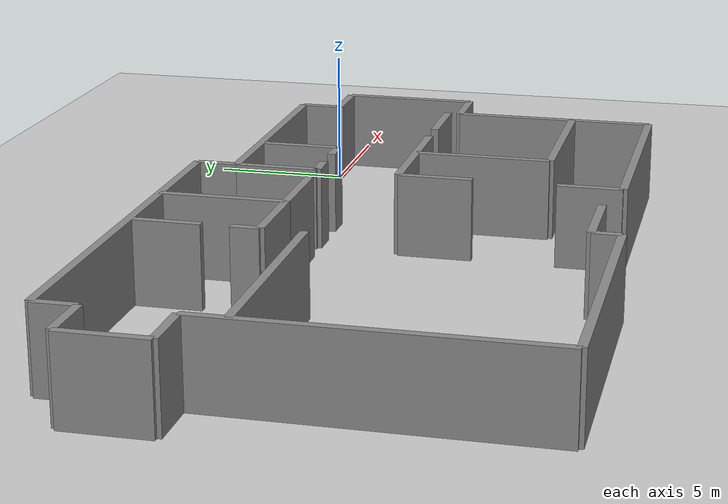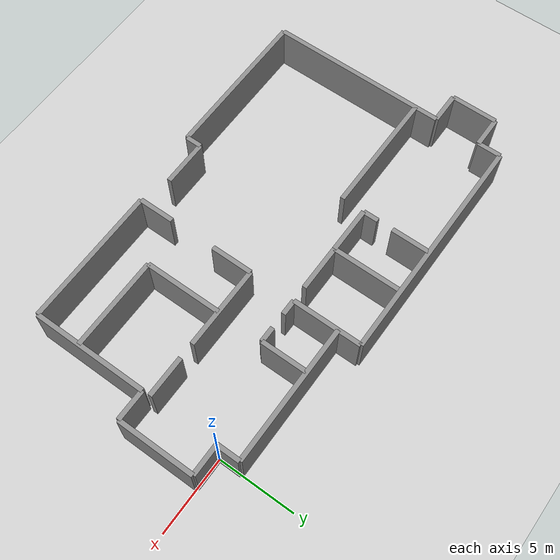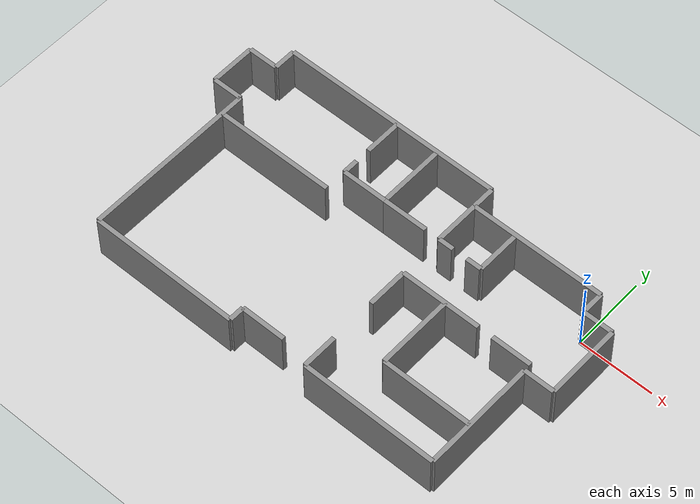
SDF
<sdf version='1.9'>
  <world name='empty'>
    <physics name='1ms' type='ignored'>
      <max_step_size>0.001</max_step_size>
      <real_time_factor>1</real_time_factor>
      <real_time_update_rate>1000</real_time_update_rate>
    </physics>
    <plugin name='gz::sim::systems::Physics' filename='ignition-gazebo-physics-system'/>
    <plugin name='gz::sim::systems::UserCommands' filename='ignition-gazebo-user-commands-system'/>
    <plugin name='gz::sim::systems::SceneBroadcaster' filename='ignition-gazebo-scene-broadcaster-system'/>
    <plugin name='gz::sim::systems::Contact' filename='ignition-gazebo-contact-system'/>
    <gravity>0 0 -9.8</gravity>
    <magnetic_field>6e-06 2.3e-05 -4.2e-05</magnetic_field>
    <atmosphere type='adiabatic'/>
    <scene>
      <ambient>0.4 0.4 0.4 1</ambient>
      <background>0.7 0.7 0.7 1</background>
      <shadows>true</shadows>
    </scene>
    <model name='ground_plane'>
      <static>true</static>
      <link name='link'>
        <collision name='collision'>
          <geometry>
            <plane>
              <normal>0 0 1</normal>
              <size>100 100</size>
            </plane>
          </geometry>
          <surface>
            <friction>
              <ode/>
            </friction>
            <bounce/>
            <contact/>
          </surface>
        </collision>
        <visual name='visual'>
          <geometry>
            <plane>
              <normal>0 0 1</normal>
              <size>100 100</size>
            </plane>
          </geometry>
          <material>
            <ambient>0.8 0.8 0.8 1</ambient>
            <diffuse>0.8 0.8 0.8 1</diffuse>
            <specular>0.8 0.8 0.8 1</specular>
          </material>
        </visual>
        <pose>0 0 0 0 -0 0</pose>
        <inertial>
          <pose>0 0 0 0 -0 0</pose>
          <mass>1</mass>
          <inertia>
            <ixx>1</ixx>
            <ixy>0</ixy>
            <ixz>0</ixz>
            <iyy>1</iyy>
            <iyz>0</iyz>
            <izz>1</izz>
          </inertia>
        </inertial>
        <enable_wind>false</enable_wind>
      </link>
      <pose>0 0 0 0 -0 0</pose>
      <self_collide>false</self_collide>
    </model>
    <model name='dwg_walls_30cm'>
      <static>true</static>
      <link name='walls'>
        <collision name='wall_001_collision'>
          <pose>0 0.75 1.5 0 0 1.570796</pose>
          <geometry>
            <box>
              <size>1.5 0.3 3</size>
            </box>
          </geometry>
          <surface>
            <friction><ode/></friction>
            <bounce/>
            <contact/>
          </surface>
        </collision>
        <visual name='wall_001_visual'>
          <pose>0 0.75 1.5 0 0 1.570796</pose>
          <geometry>
            <box>
              <size>1.5 0.3 3</size>
            </box>
          </geometry>
          <material>
            <ambient>0.45 0.45 0.45 1</ambient>
            <diffuse>0.55 0.55 0.55 1</diffuse>
            <specular>0.15 0.15 0.15 1</specular>
          </material>
        </visual>
        <collision name='wall_002_collision'>
          <pose>-6 0 1.5 0 0 -1.570796</pose>
          <geometry>
            <box>
              <size>3 0.3 3</size>
            </box>
          </geometry>
          <surface>
            <friction><ode/></friction>
            <bounce/>
            <contact/>
          </surface>
        </collision>
        <visual name='wall_002_visual'>
          <pose>-6 0 1.5 0 0 -1.570796</pose>
          <geometry>
            <box>
              <size>3 0.3 3</size>
            </box>
          </geometry>
          <material>
            <ambient>0.45 0.45 0.45 1</ambient>
            <diffuse>0.55 0.55 0.55 1</diffuse>
            <specular>0.15 0.15 0.15 1</specular>
          </material>
        </visual>
        <collision name='wall_003_collision'>
          <pose>-6.5 -1.5 1.5 0 0 3.141593</pose>
          <geometry>
            <box>
              <size>1 0.3 3</size>
            </box>
          </geometry>
          <surface>
            <friction><ode/></friction>
            <bounce/>
            <contact/>
          </surface>
        </collision>
        <visual name='wall_003_visual'>
          <pose>-6.5 -1.5 1.5 0 0 3.141593</pose>
          <geometry>
            <box>
              <size>1 0.3 3</size>
            </box>
          </geometry>
          <material>
            <ambient>0.45 0.45 0.45 1</ambient>
            <diffuse>0.55 0.55 0.55 1</diffuse>
            <specular>0.15 0.15 0.15 1</specular>
          </material>
        </visual>
        <collision name='wall_004_collision'>
          <pose>-4.5 1.5 1.5 0 0 -3.141593</pose>
          <geometry>
            <box>
              <size>9 0.3 3</size>
            </box>
          </geometry>
          <surface>
            <friction><ode/></friction>
            <bounce/>
            <contact/>
          </surface>
        </collision>
        <visual name='wall_004_visual'>
          <pose>-4.5 1.5 1.5 0 0 -3.141593</pose>
          <geometry>
            <box>
              <size>9 0.3 3</size>
            </box>
          </geometry>
          <material>
            <ambient>0.45 0.45 0.45 1</ambient>
            <diffuse>0.55 0.55 0.55 1</diffuse>
            <specular>0.15 0.15 0.15 1</specular>
          </material>
        </visual>
        <collision name='wall_005_collision'>
          <pose>-9 2.25 1.5 0 0 1.570796</pose>
          <geometry>
            <box>
              <size>1.5 0.3 3</size>
            </box>
          </geometry>
          <surface>
            <friction><ode/></friction>
            <bounce/>
            <contact/>
          </surface>
        </collision>
        <visual name='wall_005_visual'>
          <pose>-9 2.25 1.5 0 0 1.570796</pose>
          <geometry>
            <box>
              <size>1.5 0.3 3</size>
            </box>
          </geometry>
          <material>
            <ambient>0.45 0.45 0.45 1</ambient>
            <diffuse>0.55 0.55 0.55 1</diffuse>
            <specular>0.15 0.15 0.15 1</specular>
          </material>
        </visual>
        <collision name='wall_006_collision'>
          <pose>-16.5 3 1.5 0 0 -3.141593</pose>
          <geometry>
            <box>
              <size>15 0.3 3</size>
            </box>
          </geometry>
          <surface>
            <friction><ode/></friction>
            <bounce/>
            <contact/>
          </surface>
        </collision>
        <visual name='wall_006_visual'>
          <pose>-16.5 3 1.5 0 0 -3.141593</pose>
          <geometry>
            <box>
              <size>15 0.3 3</size>
            </box>
          </geometry>
          <material>
            <ambient>0.45 0.45 0.45 1</ambient>
            <diffuse>0.55 0.55 0.55 1</diffuse>
            <specular>0.15 0.15 0.15 1</specular>
          </material>
        </visual>
        <collision name='wall_007_collision'>
          <pose>-24 2.25 1.5 0 0 -1.570796</pose>
          <geometry>
            <box>
              <size>1.5 0.3 3</size>
            </box>
          </geometry>
          <surface>
            <friction><ode/></friction>
            <bounce/>
            <contact/>
          </surface>
        </collision>
        <visual name='wall_007_visual'>
          <pose>-24 2.25 1.5 0 0 -1.570796</pose>
          <geometry>
            <box>
              <size>1.5 0.3 3</size>
            </box>
          </geometry>
          <material>
            <ambient>0.45 0.45 0.45 1</ambient>
            <diffuse>0.55 0.55 0.55 1</diffuse>
            <specular>0.15 0.15 0.15 1</specular>
          </material>
        </visual>
        <collision name='wall_008_collision'>
          <pose>-25 1.5 1.5 0 0 -3.141593</pose>
          <geometry>
            <box>
              <size>2 0.3 3</size>
            </box>
          </geometry>
          <surface>
            <friction><ode/></friction>
            <bounce/>
            <contact/>
          </surface>
        </collision>
        <visual name='wall_008_visual'>
          <pose>-25 1.5 1.5 0 0 -3.141593</pose>
          <geometry>
            <box>
              <size>2 0.3 3</size>
            </box>
          </geometry>
          <material>
            <ambient>0.45 0.45 0.45 1</ambient>
            <diffuse>0.55 0.55 0.55 1</diffuse>
            <specular>0.15 0.15 0.15 1</specular>
          </material>
        </visual>
        <collision name='wall_009_collision'>
          <pose>-26 0 1.5 0 0 -1.570796</pose>
          <geometry>
            <box>
              <size>3 0.3 3</size>
            </box>
          </geometry>
          <surface>
            <friction><ode/></friction>
            <bounce/>
            <contact/>
          </surface>
        </collision>
        <visual name='wall_009_visual'>
          <pose>-26 0 1.5 0 0 -1.570796</pose>
          <geometry>
            <box>
              <size>3 0.3 3</size>
            </box>
          </geometry>
          <material>
            <ambient>0.45 0.45 0.45 1</ambient>
            <diffuse>0.55 0.55 0.55 1</diffuse>
            <specular>0.15 0.15 0.15 1</specular>
          </material>
        </visual>
        <collision name='wall_010_collision'>
          <pose>-25 -1.5 1.5 0 0 0</pose>
          <geometry>
            <box>
              <size>2 0.3 3</size>
            </box>
          </geometry>
          <surface>
            <friction><ode/></friction>
            <bounce/>
            <contact/>
          </surface>
        </collision>
        <visual name='wall_010_visual'>
          <pose>-25 -1.5 1.5 0 0 0</pose>
          <geometry>
            <box>
              <size>2 0.3 3</size>
            </box>
          </geometry>
          <material>
            <ambient>0.45 0.45 0.45 1</ambient>
            <diffuse>0.55 0.55 0.55 1</diffuse>
            <specular>0.15 0.15 0.15 1</specular>
          </material>
        </visual>
        <collision name='wall_011_collision'>
          <pose>-24 -7.25 1.5 0 0 -1.570796</pose>
          <geometry>
            <box>
              <size>11.5 0.3 3</size>
            </box>
          </geometry>
          <surface>
            <friction><ode/></friction>
            <bounce/>
            <contact/>
          </surface>
        </collision>
        <visual name='wall_011_visual'>
          <pose>-24 -7.25 1.5 0 0 -1.570796</pose>
          <geometry>
            <box>
              <size>11.5 0.3 3</size>
            </box>
          </geometry>
          <material>
            <ambient>0.45 0.45 0.45 1</ambient>
            <diffuse>0.55 0.55 0.55 1</diffuse>
            <specular>0.15 0.15 0.15 1</specular>
          </material>
        </visual>
        <collision name='wall_012_collision'>
          <pose>-19 -13 1.5 0 0 0</pose>
          <geometry>
            <box>
              <size>10 0.3 3</size>
            </box>
          </geometry>
          <surface>
            <friction><ode/></friction>
            <bounce/>
            <contact/>
          </surface>
        </collision>
        <visual name='wall_012_visual'>
          <pose>-19 -13 1.5 0 0 0</pose>
          <geometry>
            <box>
              <size>10 0.3 3</size>
            </box>
          </geometry>
          <material>
            <ambient>0.45 0.45 0.45 1</ambient>
            <diffuse>0.55 0.55 0.55 1</diffuse>
            <specular>0.15 0.15 0.15 1</specular>
          </material>
        </visual>
        <collision name='wall_013_collision'>
          <pose>-14 -12.5 1.5 0 0 1.570796</pose>
          <geometry>
            <box>
              <size>1 0.3 3</size>
            </box>
          </geometry>
          <surface>
            <friction><ode/></friction>
            <bounce/>
            <contact/>
          </surface>
        </collision>
        <visual name='wall_013_visual'>
          <pose>-14 -12.5 1.5 0 0 1.570796</pose>
          <geometry>
            <box>
              <size>1 0.3 3</size>
            </box>
          </geometry>
          <material>
            <ambient>0.45 0.45 0.45 1</ambient>
            <diffuse>0.55 0.55 0.55 1</diffuse>
            <specular>0.15 0.15 0.15 1</specular>
          </material>
        </visual>
        <collision name='wall_014_collision'>
          <pose>-12.5 -12 1.5 0 0 0</pose>
          <geometry>
            <box>
              <size>3 0.3 3</size>
            </box>
          </geometry>
          <surface>
            <friction><ode/></friction>
            <bounce/>
            <contact/>
          </surface>
        </collision>
        <visual name='wall_014_visual'>
          <pose>-12.5 -12 1.5 0 0 0</pose>
          <geometry>
            <box>
              <size>3 0.3 3</size>
            </box>
          </geometry>
          <material>
            <ambient>0.45 0.45 0.45 1</ambient>
            <diffuse>0.55 0.55 0.55 1</diffuse>
            <specular>0.15 0.15 0.15 1</specular>
          </material>
        </visual>
        <collision name='wall_015_collision'>
          <pose>-9 -11.342075 1.5 0 0 -1.570796</pose>
          <geometry>
            <box>
              <size>2.31585 0.3 3</size>
            </box>
          </geometry>
          <surface>
            <friction><ode/></friction>
            <bounce/>
            <contact/>
          </surface>
        </collision>
        <visual name='wall_015_visual'>
          <pose>-9 -11.342075 1.5 0 0 -1.570796</pose>
          <geometry>
            <box>
              <size>2.31585 0.3 3</size>
            </box>
          </geometry>
          <material>
            <ambient>0.45 0.45 0.45 1</ambient>
            <diffuse>0.55 0.55 0.55 1</diffuse>
            <specular>0.15 0.15 0.15 1</specular>
          </material>
        </visual>
        <collision name='wall_016_collision'>
          <pose>-4.5 -12.5 1.5 0 0 0</pose>
          <geometry>
            <box>
              <size>9 0.3 3</size>
            </box>
          </geometry>
          <surface>
            <friction><ode/></friction>
            <bounce/>
            <contact/>
          </surface>
        </collision>
        <visual name='wall_016_visual'>
          <pose>-4.5 -12.5 1.5 0 0 0</pose>
          <geometry>
            <box>
              <size>9 0.3 3</size>
            </box>
          </geometry>
          <material>
            <ambient>0.45 0.45 0.45 1</ambient>
            <diffuse>0.55 0.55 0.55 1</diffuse>
            <specular>0.15 0.15 0.15 1</specular>
          </material>
        </visual>
        <collision name='wall_017_collision'>
          <pose>0 -8.75 1.5 0 0 1.570796</pose>
          <geometry>
            <box>
              <size>7.5 0.3 3</size>
            </box>
          </geometry>
          <surface>
            <friction><ode/></friction>
            <bounce/>
            <contact/>
          </surface>
        </collision>
        <visual name='wall_017_visual'>
          <pose>0 -8.75 1.5 0 0 1.570796</pose>
          <geometry>
            <box>
              <size>7.5 0.3 3</size>
            </box>
          </geometry>
          <material>
            <ambient>0.45 0.45 0.45 1</ambient>
            <diffuse>0.55 0.55 0.55 1</diffuse>
            <specular>0.15 0.15 0.15 1</specular>
          </material>
        </visual>
        <collision name='wall_018_collision'>
          <pose>1 -5 1.5 0 0 0</pose>
          <geometry>
            <box>
              <size>2 0.3 3</size>
            </box>
          </geometry>
          <surface>
            <friction><ode/></friction>
            <bounce/>
            <contact/>
          </surface>
        </collision>
        <visual name='wall_018_visual'>
          <pose>1 -5 1.5 0 0 0</pose>
          <geometry>
            <box>
              <size>2 0.3 3</size>
            </box>
          </geometry>
          <material>
            <ambient>0.45 0.45 0.45 1</ambient>
            <diffuse>0.55 0.55 0.55 1</diffuse>
            <specular>0.15 0.15 0.15 1</specular>
          </material>
        </visual>
        <collision name='wall_019_collision'>
          <pose>2 -2.5 1.5 0 0 1.570796</pose>
          <geometry>
            <box>
              <size>5 0.3 3</size>
            </box>
          </geometry>
          <surface>
            <friction><ode/></friction>
            <bounce/>
            <contact/>
          </surface>
        </collision>
        <visual name='wall_019_visual'>
          <pose>2 -2.5 1.5 0 0 1.570796</pose>
          <geometry>
            <box>
              <size>5 0.3 3</size>
            </box>
          </geometry>
          <material>
            <ambient>0.45 0.45 0.45 1</ambient>
            <diffuse>0.55 0.55 0.55 1</diffuse>
            <specular>0.15 0.15 0.15 1</specular>
          </material>
        </visual>
        <collision name='wall_020_collision'>
          <pose>1 0 1.5 0 0 3.141593</pose>
          <geometry>
            <box>
              <size>2 0.3 3</size>
            </box>
          </geometry>
          <surface>
            <friction><ode/></friction>
            <bounce/>
            <contact/>
          </surface>
        </collision>
        <visual name='wall_020_visual'>
          <pose>1 0 1.5 0 0 3.141593</pose>
          <geometry>
            <box>
              <size>2 0.3 3</size>
            </box>
          </geometry>
          <material>
            <ambient>0.45 0.45 0.45 1</ambient>
            <diffuse>0.55 0.55 0.55 1</diffuse>
            <specular>0.15 0.15 0.15 1</specular>
          </material>
        </visual>
        <collision name='wall_021_collision'>
          <pose>-20 -3 1.5 0 0 0</pose>
          <geometry>
            <box>
              <size>8 0.3 3</size>
            </box>
          </geometry>
          <surface>
            <friction><ode/></friction>
            <bounce/>
            <contact/>
          </surface>
        </collision>
        <visual name='wall_021_visual'>
          <pose>-20 -3 1.5 0 0 0</pose>
          <geometry>
            <box>
              <size>8 0.3 3</size>
            </box>
          </geometry>
          <material>
            <ambient>0.45 0.45 0.45 1</ambient>
            <diffuse>0.55 0.55 0.55 1</diffuse>
            <specular>0.15 0.15 0.15 1</specular>
          </material>
        </visual>
        <collision name='wall_022_collision'>
          <pose>-16 1.75 1.5 0 0 -1.570796</pose>
          <geometry>
            <box>
              <size>2.5 0.3 3</size>
            </box>
          </geometry>
          <surface>
            <friction><ode/></friction>
            <bounce/>
            <contact/>
          </surface>
        </collision>
        <visual name='wall_022_visual'>
          <pose>-16 1.75 1.5 0 0 -1.570796</pose>
          <geometry>
            <box>
              <size>2.5 0.3 3</size>
            </box>
          </geometry>
          <material>
            <ambient>0.45 0.45 0.45 1</ambient>
            <diffuse>0.55 0.55 0.55 1</diffuse>
            <specular>0.15 0.15 0.15 1</specular>
          </material>
        </visual>
        <collision name='wall_023_collision'>
          <pose>-16 -1 1.5 0 0 -1.570796</pose>
          <geometry>
            <box>
              <size>1 0.3 3</size>
            </box>
          </geometry>
          <surface>
            <friction><ode/></friction>
            <bounce/>
            <contact/>
          </surface>
        </collision>
        <visual name='wall_023_visual'>
          <pose>-16 -1 1.5 0 0 -1.570796</pose>
          <geometry>
            <box>
              <size>1 0.3 3</size>
            </box>
          </geometry>
          <material>
            <ambient>0.45 0.45 0.45 1</ambient>
            <diffuse>0.55 0.55 0.55 1</diffuse>
            <specular>0.15 0.15 0.15 1</specular>
          </material>
        </visual>
        <collision name='wall_024_collision'>
          <pose>-14.5 -1.5 1.5 0 0 0</pose>
          <geometry>
            <box>
              <size>3 0.3 3</size>
            </box>
          </geometry>
          <surface>
            <friction><ode/></friction>
            <bounce/>
            <contact/>
          </surface>
        </collision>
        <visual name='wall_024_visual'>
          <pose>-14.5 -1.5 1.5 0 0 0</pose>
          <geometry>
            <box>
              <size>3 0.3 3</size>
            </box>
          </geometry>
          <material>
            <ambient>0.45 0.45 0.45 1</ambient>
            <diffuse>0.55 0.55 0.55 1</diffuse>
            <specular>0.15 0.15 0.15 1</specular>
          </material>
        </visual>
        <collision name='wall_025_collision'>
          <pose>-13 0.75 1.5 0 0 1.570796</pose>
          <geometry>
            <box>
              <size>4.5 0.3 3</size>
            </box>
          </geometry>
          <surface>
            <friction><ode/></friction>
            <bounce/>
            <contact/>
          </surface>
        </collision>
        <visual name='wall_025_visual'>
          <pose>-13 0.75 1.5 0 0 1.570796</pose>
          <geometry>
            <box>
              <size>4.5 0.3 3</size>
            </box>
          </geometry>
          <material>
            <ambient>0.45 0.45 0.45 1</ambient>
            <diffuse>0.55 0.55 0.55 1</diffuse>
            <specular>0.15 0.15 0.15 1</specular>
          </material>
        </visual>
        <collision name='wall_026_collision'>
          <pose>-11.5 -1.5 1.5 0 0 0</pose>
          <geometry>
            <box>
              <size>3 0.3 3</size>
            </box>
          </geometry>
          <surface>
            <friction><ode/></friction>
            <bounce/>
            <contact/>
          </surface>
        </collision>
        <visual name='wall_026_visual'>
          <pose>-11.5 -1.5 1.5 0 0 0</pose>
          <geometry>
            <box>
              <size>3 0.3 3</size>
            </box>
          </geometry>
          <material>
            <ambient>0.45 0.45 0.45 1</ambient>
            <diffuse>0.55 0.55 0.55 1</diffuse>
            <specular>0.15 0.15 0.15 1</specular>
          </material>
        </visual>
        <collision name='wall_027_collision'>
          <pose>-9 0 1.5 0 0 -1.570796</pose>
          <geometry>
            <box>
              <size>3 0.3 3</size>
            </box>
          </geometry>
          <surface>
            <friction><ode/></friction>
            <bounce/>
            <contact/>
          </surface>
        </collision>
        <visual name='wall_027_visual'>
          <pose>-9 0 1.5 0 0 -1.570796</pose>
          <geometry>
            <box>
              <size>3 0.3 3</size>
            </box>
          </geometry>
          <material>
            <ambient>0.45 0.45 0.45 1</ambient>
            <diffuse>0.55 0.55 0.55 1</diffuse>
            <specular>0.15 0.15 0.15 1</specular>
          </material>
        </visual>
        <collision name='wall_028_collision'>
          <pose>-8.5 -1.5 1.5 0 0 0</pose>
          <geometry>
            <box>
              <size>1 0.3 3</size>
            </box>
          </geometry>
          <surface>
            <friction><ode/></friction>
            <bounce/>
            <contact/>
          </surface>
        </collision>
        <visual name='wall_028_visual'>
          <pose>-8.5 -1.5 1.5 0 0 0</pose>
          <geometry>
            <box>
              <size>1 0.3 3</size>
            </box>
          </geometry>
          <material>
            <ambient>0.45 0.45 0.45 1</ambient>
            <diffuse>0.55 0.55 0.55 1</diffuse>
            <specular>0.15 0.15 0.15 1</specular>
          </material>
        </visual>
        <collision name='wall_029_collision'>
          <pose>-1.321848 -4.5 1.5 0 0 -3.141593</pose>
          <geometry>
            <box>
              <size>2.643696 0.3 3</size>
            </box>
          </geometry>
          <surface>
            <friction><ode/></friction>
            <bounce/>
            <contact/>
          </surface>
        </collision>
        <visual name='wall_029_visual'>
          <pose>-1.321848 -4.5 1.5 0 0 -3.141593</pose>
          <geometry>
            <box>
              <size>2.643696 0.3 3</size>
            </box>
          </geometry>
          <material>
            <ambient>0.45 0.45 0.45 1</ambient>
            <diffuse>0.55 0.55 0.55 1</diffuse>
            <specular>0.15 0.15 0.15 1</specular>
          </material>
        </visual>
        <collision name='wall_030_collision'>
          <pose>-6.321848 -4.5 1.5 0 0 -3.141593</pose>
          <geometry>
            <box>
              <size>5.356304 0.3 3</size>
            </box>
          </geometry>
          <surface>
            <friction><ode/></friction>
            <bounce/>
            <contact/>
          </surface>
        </collision>
        <visual name='wall_030_visual'>
          <pose>-6.321848 -4.5 1.5 0 0 -3.141593</pose>
          <geometry>
            <box>
              <size>5.356304 0.3 3</size>
            </box>
          </geometry>
          <material>
            <ambient>0.45 0.45 0.45 1</ambient>
            <diffuse>0.55 0.55 0.55 1</diffuse>
            <specular>0.15 0.15 0.15 1</specular>
          </material>
        </visual>
        <collision name='wall_031_collision'>
          <pose>-9 -5.842075 1.5 0 0 -1.570796</pose>
          <geometry>
            <box>
              <size>2.68415 0.3 3</size>
            </box>
          </geometry>
          <surface>
            <friction><ode/></friction>
            <bounce/>
            <contact/>
          </surface>
        </collision>
        <visual name='wall_031_visual'>
          <pose>-9 -5.842075 1.5 0 0 -1.570796</pose>
          <geometry>
            <box>
              <size>2.68415 0.3 3</size>
            </box>
          </geometry>
          <material>
            <ambient>0.45 0.45 0.45 1</ambient>
            <diffuse>0.55 0.55 0.55 1</diffuse>
            <specular>0.15 0.15 0.15 1</specular>
          </material>
        </visual>
        <collision name='wall_032_collision'>
          <pose>-6 -7 1.5 0 0 -1.570796</pose>
          <geometry>
            <box>
              <size>5 0.3 3</size>
            </box>
          </geometry>
          <surface>
            <friction><ode/></friction>
            <bounce/>
            <contact/>
          </surface>
        </collision>
        <visual name='wall_032_visual'>
          <pose>-6 -7 1.5 0 0 -1.570796</pose>
          <geometry>
            <box>
              <size>5 0.3 3</size>
            </box>
          </geometry>
          <material>
            <ambient>0.45 0.45 0.45 1</ambient>
            <diffuse>0.55 0.55 0.55 1</diffuse>
            <specular>0.15 0.15 0.15 1</specular>
          </material>
        </visual>
        <collision name='wall_033_collision'>
          <pose>-3 -9.5 1.5 0 0 0</pose>
          <geometry>
            <box>
              <size>6 0.3 3</size>
            </box>
          </geometry>
          <surface>
            <friction><ode/></friction>
            <bounce/>
            <contact/>
          </surface>
        </collision>
        <visual name='wall_033_visual'>
          <pose>-3 -9.5 1.5 0 0 0</pose>
          <geometry>
            <box>
              <size>6 0.3 3</size>
            </box>
          </geometry>
          <material>
            <ambient>0.45 0.45 0.45 1</ambient>
            <diffuse>0.55 0.55 0.55 1</diffuse>
            <specular>0.15 0.15 0.15 1</specular>
          </material>
        </visual>
      </link>
    </model>
    <light name='sun' type='directional'>
      <pose>0 0 10 0 -0 0</pose>
      <cast_shadows>true</cast_shadows>
      <intensity>1</intensity>
      <direction>-0.5 0.1 -0.9</direction>
      <diffuse>0.8 0.8 0.8 1</diffuse>
      <specular>0.2 0.2 0.2 1</specular>
      <attenuation>
        <range>1000</range>
        <linear>0.01</linear>
        <constant>0.90000000000000002</constant>
        <quadratic>0.001</quadratic>
      </attenuation>
      <spot>
        <inner_angle>0</inner_angle>
        <outer_angle>0</outer_angle>
        <falloff>0</falloff>
      </spot>
    </light>
  </world>
</sdf>
